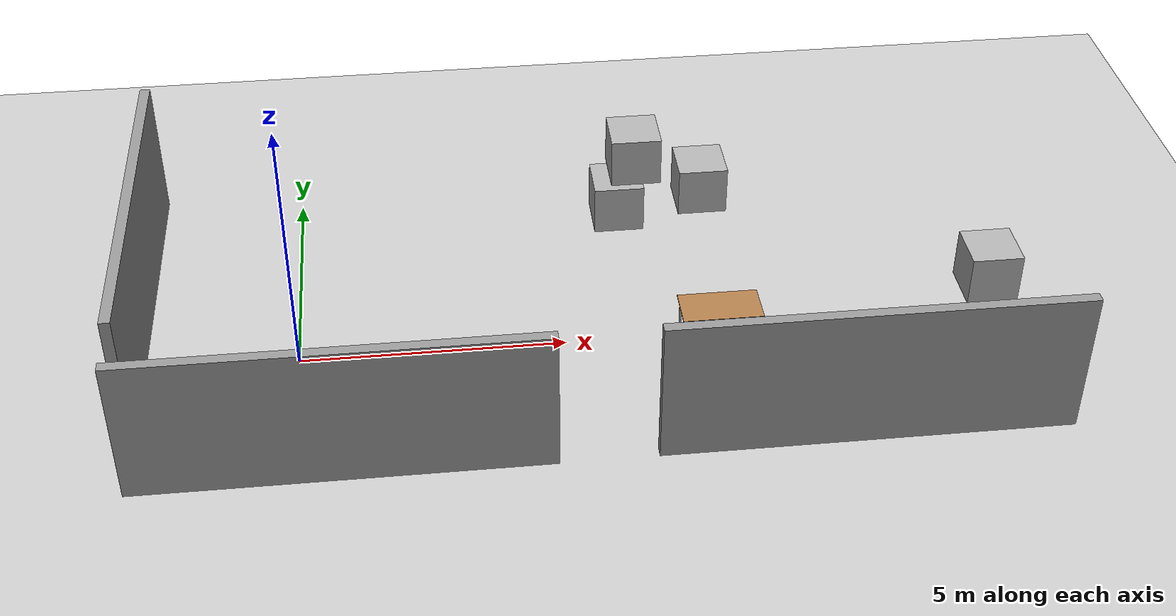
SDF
<sdf version="1.10">
 <world name="empty">
  <physics name="1ms" type="ignored">
   <max_step_size>0.001</max_step_size>
   <real_time_factor>1</real_time_factor>
   <real_time_update_rate>1000</real_time_update_rate>
  </physics>
  <plugin name="gz::sim::systems::Physics" filename="gz-sim-physics-system"/>
  <plugin name="gz::sim::systems::UserCommands" filename="gz-sim-user-commands-system"/>
  <plugin name="gz::sim::systems::SceneBroadcaster" filename="gz-sim-scene-broadcaster-system"/>
  <plugin name="gz::sim::systems::Contact" filename="gz-sim-contact-system"/>
  <plugin name="gz::sim::systems::Sensors" filename="gz-sim-sensors-system">
   <render_engine>ogre2</render_engine>
  </plugin>
  <gravity>0 0 -9.8000000000000007</gravity>
  <magnetic_field>5.5644999999999998e-06 2.2875799999999999e-05 -4.2388400000000002e-05</magnetic_field>
  <atmosphere type="adiabatic"/>
  <scene>
   <ambient>0.400000006 0.400000006 0.400000006 1</ambient>
   <background>0.699999988 0.699999988 0.699999988 1</background>
   <shadows>true</shadows>
  </scene>
  <model name="ground_plane">
   <static>true</static>
   <link name="link">
    <collision name="collision">
     <geometry><plane><normal>0 0 1</normal><size>100 100</size></plane></geometry>
    </collision>
    <visual name="visual">
     <geometry><plane><normal>0 0 1</normal><size>100 100</size></plane></geometry>
     <material>
      <ambient>0.800000012 0.800000012 0.800000012 1</ambient>
      <diffuse>0.800000012 0.800000012 0.800000012 1</diffuse>
      <specular>0.800000012 0.800000012 0.800000012 1</specular>
     </material>
    </visual>
    <inertial>
     <mass>1</mass>
     <inertia><ixx>1</ixx><ixy>0</ixy><ixz>0</ixz><iyy>1</iyy><iyz>0</iyz><izz>1</izz></inertia>
    </inertial>
   </link>
  </model>
  <model name="grey_wall">
   <static>true</static>
   <link name="link">
    <pose>0 0 1.3999999999999999 0 0 0</pose>
    <collision name="collision">
     <geometry><box><size>7.5 0.20000000000000001 2.7999999999999998</size></box></geometry>
    </collision>
    <visual name="visual">
     <cast_shadows>false</cast_shadows>
     <geometry><box><size>7.5 0.20000000000000001 2.7999999999999998</size></box></geometry>
     <material>
      <script>
       <uri>https://fuel.gazebosim.org/1.0/openrobotics/models/grey wall/3/files/materials/scripts</uri>
       <uri>https://fuel.gazebosim.org/1.0/openrobotics/models/grey wall/3/files/materials/textures</uri>
       <name>vrc/grey_wall</name>
      </script>
     </material>
    </visual>
    <inertial>
     <mass>1</mass>
     <inertia><ixx>1</ixx><ixy>0</ixy><ixz>0</ixz><iyy>1</iyy><iyz>0</iyz><izz>1</izz></inertia>
    </inertial>
   </link>
   <pose>0.79266700000000001 -3.1853799999999999 0 0 0 0</pose>
  </model>
  <model name="grey_wall_0">
   <static>true</static>
   <link name="link">
    <pose>0 0 1.3999999999999999 0 0 0</pose>
    <collision name="collision">
     <geometry><box><size>7.5 0.20000000000000001 2.7999999999999998</size></box></geometry>
    </collision>
    <visual name="visual">
     <cast_shadows>false</cast_shadows>
     <geometry><box><size>7.5 0.20000000000000001 2.7999999999999998</size></box></geometry>
     <material>
      <script>
       <uri>https://fuel.gazebosim.org/1.0/openrobotics/models/grey wall/3/files/materials/scripts</uri>
       <uri>https://fuel.gazebosim.org/1.0/openrobotics/models/grey wall/3/files/materials/textures</uri>
       <name>vrc/grey_wall</name>
      </script>
     </material>
    </visual>
    <inertial>
     <mass>1</mass>
     <inertia><ixx>1</ixx><ixy>0</ixy><ixz>0</ixz><iyy>1</iyy><iyz>0</iyz><izz>1</izz></inertia>
    </inertial>
   </link>
   <pose>-2.9196200000000001 1.69773 0 0 0 1.5630200000000001</pose>
  </model>
  <model name="grey_wall_1">
   <static>true</static>
   <link name="link">
    <pose>0 0 1.3999999999999999 0 0 0</pose>
    <collision name="collision">
     <geometry><box><size>7.5 0.20000000000000001 2.7999999999999998</size></box></geometry>
    </collision>
    <visual name="visual">
     <cast_shadows>false</cast_shadows>
     <geometry><box><size>7.5 0.20000000000000001 2.7999999999999998</size></box></geometry>
     <material>
      <script>
       <uri>https://fuel.gazebosim.org/1.0/openrobotics/models/grey wall/3/files/materials/scripts</uri>
       <uri>https://fuel.gazebosim.org/1.0/openrobotics/models/grey wall/3/files/materials/textures</uri>
       <name>vrc/grey_wall</name>
      </script>
     </material>
    </visual>
   </link>
   <pose>10.050599999999999 -3.1832500000000001 0 0 0 0</pose>
  </model>
  <model name="Table">
   <static>true</static>
   <link name="link">
    <collision name="surface">
     <pose>0 0 1 0 0 0</pose>
     <geometry><box><size>1.5 0.80000000000000004 0.029999999999999999</size></box></geometry>
     <surface><friction><ode><mu>0.59999999999999998</mu><mu2>0.59999999999999998</mu2></ode></friction></surface>
    </collision>
    <visual name="visual1">
     <pose>0 0 1 0 0 0</pose>
     <geometry><box><size>1.5 0.80000000000000004 0.029999999999999999</size></box></geometry>
     <material>
      <diffuse>1 1 1 1</diffuse>
      <script><uri>file://media/materials/scripts/gazebo.material</uri><name>Gazebo/Wood</name></script>
      <pbr>
       <metal>
        <albedo_map>https://fuel.gazebosim.org/1.0/openrobotics/models/table/4/files/Table_Diffuse.jpg</albedo_map>
       </metal>
      </pbr>
     </material>
    </visual>
    <collision name="front_left_leg">
     <pose>0.68000000000000005 0.38 0.5 0 0 0</pose>
     <geometry><cylinder><radius>0.02</radius><length>1</length></cylinder></geometry>
    </collision>
    <visual name="front_left_leg">
     <pose>0.68000000000000005 0.38 0.5 0 0 0</pose>
     <geometry><cylinder><radius>0.02</radius><length>1</length></cylinder></geometry>
     <material>
      <diffuse>0.5 0.5 0.5 1</diffuse>
      <script><uri>file://media/materials/scripts/gazebo.material</uri><name>Gazebo/Grey</name></script>
     </material>
    </visual>
    <collision name="front_right_leg">
     <pose>0.68000000000000005 -0.38 0.5 0 0 0</pose>
     <geometry><cylinder><radius>0.02</radius><length>1</length></cylinder></geometry>
    </collision>
    <visual name="front_right_leg">
     <pose>0.68000000000000005 -0.38 0.5 0 0 0</pose>
     <geometry><cylinder><radius>0.02</radius><length>1</length></cylinder></geometry>
     <material>
      <diffuse>0.5 0.5 0.5 1</diffuse>
      <script><uri>file://media/materials/scripts/gazebo.material</uri><name>Gazebo/Grey</name></script>
     </material>
    </visual>
    <collision name="back_right_leg">
     <pose>-0.68000000000000005 -0.38 0.5 0 0 0</pose>
     <geometry><cylinder><radius>0.02</radius><length>1</length></cylinder></geometry>
    </collision>
    <visual name="back_right_leg">
     <pose>-0.68000000000000005 -0.38 0.5 0 0 0</pose>
     <geometry><cylinder><radius>0.02</radius><length>1</length></cylinder></geometry>
     <material>
      <diffuse>0.5 0.5 0.5 1</diffuse>
      <script><uri>file://media/materials/scripts/gazebo.material</uri><name>Gazebo/Grey</name></script>
     </material>
    </visual>
    <collision name="back_left_leg">
     <pose>-0.68000000000000005 0.38 0.5 0 0 0</pose>
     <geometry><cylinder><radius>0.02</radius><length>1</length></cylinder></geometry>
    </collision>
    <visual name="back_left_leg">
     <pose>-0.68000000000000005 0.38 0.5 0 0 0</pose>
     <geometry><cylinder><radius>0.02</radius><length>1</length></cylinder></geometry>
     <material>
      <diffuse>0.5 0.5 0.5 1</diffuse>
      <script><uri>file://media/materials/scripts/gazebo.material</uri><name>Gazebo/Grey</name></script>
     </material>
    </visual>
    <inertial>
     <mass>1</mass>
     <inertia><ixx>1</ixx><ixy>0</ixy><ixz>0</ixz><iyy>1</iyy><iyz>0</iyz><izz>1</izz></inertia>
    </inertial>
   </link>
   <pose>7.8158899999999996 -0.47002899999999997 0 0 0 0</pose>
  </model>
  <model name="box">
   <pose>6.4464399999999999 3.9990000000000001 0.5 0 0 0</pose>
   <link name="box_link">
    <inertial>
     <inertia><ixx>0.16666</ixx><ixy>0</ixy><ixz>0</ixz><iyy>0.16666</iyy><iyz>0</iyz><izz>0.16666</izz></inertia>
     <mass>1</mass>
    </inertial>
    <collision name="box_collision"><geometry><box><size>1 1 1</size></box></geometry></collision>
    <visual name="box_visual">
     <geometry><box><size>1 1 1</size></box></geometry>
     <material>
      <ambient>0.300000012 0.300000012 0.300000012 1</ambient>
      <diffuse>0.699999988 0.699999988 0.699999988 1</diffuse>
      <specular>1 1 1 1</specular>
     </material>
    </visual>
   </link>
   <static>false</static>
  </model>
  <model name="box_0">
   <pose>8.2413100000000004 4.4463400000000002 0.5 0 0 0</pose>
   <link name="box_link">
    <inertial>
     <inertia><ixx>0.16666</ixx><ixy>0</ixy><ixz>0</ixz><iyy>0.16666</iyy><iyz>0</iyz><izz>0.16666</izz></inertia>
     <mass>1</mass>
    </inertial>
    <collision name="box_collision"><geometry><box><size>1 1 1</size></box></geometry></collision>
    <visual name="box_visual">
     <geometry><box><size>1 1 1</size></box></geometry>
     <material>
      <ambient>0.300000012 0.300000012 0.300000012 1</ambient>
      <diffuse>0.699999988 0.699999988 0.699999988 1</diffuse>
      <specular>1 1 1 1</specular>
     </material>
    </visual>
   </link>
   <static>false</static>
  </model>
  <model name="box_1">
   <pose>13.365399999999999 0.84871700000000005 0.5 0 0 0</pose>
   <link name="box_link">
    <inertial>
     <inertia><ixx>0.16666</ixx><ixy>0</ixy><ixz>0</ixz><iyy>0.16666</iyy><iyz>0</iyz><izz>0.16666</izz></inertia>
     <mass>1</mass>
    </inertial>
    <collision name="box_collision"><geometry><box><size>1 1 1</size></box></geometry></collision>
    <visual name="box_visual">
     <geometry><box><size>1 1 1</size></box></geometry>
     <material>
      <ambient>0.300000012 0.300000012 0.300000012 1</ambient>
      <diffuse>0.699999988 0.699999988 0.699999988 1</diffuse>
      <specular>1 1 1 1</specular>
     </material>
    </visual>
   </link>
   <static>false</static>
  </model>
  <model name="box_2">
   <pose>6.8017478319032154 4.1703801291177118 1.4999999552521119 -1.377957546977194e-08 3.8112905430454433e-08 -9.3690564907477466e-14</pose>
   <link name="box_link">
    <inertial>
     <inertia><ixx>0.16666</ixx><ixy>0</ixy><ixz>0</ixz><iyy>0.16666</iyy><iyz>0</iyz><izz>0.16666</izz></inertia>
     <mass>1</mass>
    </inertial>
    <collision name="box_collision"><geometry><box><size>1 1 1</size></box></geometry></collision>
    <visual name="box_visual">
     <geometry><box><size>1 1 1</size></box></geometry>
     <material>
      <ambient>0.300000012 0.300000012 0.300000012 1</ambient>
      <diffuse>0.699999988 0.699999988 0.699999988 1</diffuse>
      <specular>1 1 1 1</specular>
     </material>
    </visual>
   </link>
   <static>false</static>
  </model>
  <light name="sun" type="directional">
   <pose>0 0 10 0 0 0</pose>
   <intensity>1</intensity>
   <direction>-0.5 0.10000000000000001 -0.90000000000000002</direction>
   <diffuse>0.800000012 0.800000012 0.800000012 1</diffuse>
   <specular>0.200000003 0.200000003 0.200000003 1</specular>
   <attenuation>
    <range>1000</range>
    <linear>0.0099999997764825821</linear>
    <constant>0.89999997615814209</constant>
    <quadratic>0.0010000000474974513</quadratic>
   </attenuation>
   <spot><inner_angle>0</inner_angle><outer_angle>0</outer_angle><falloff>0</falloff></spot>
  </light>
 </world>
</sdf>
